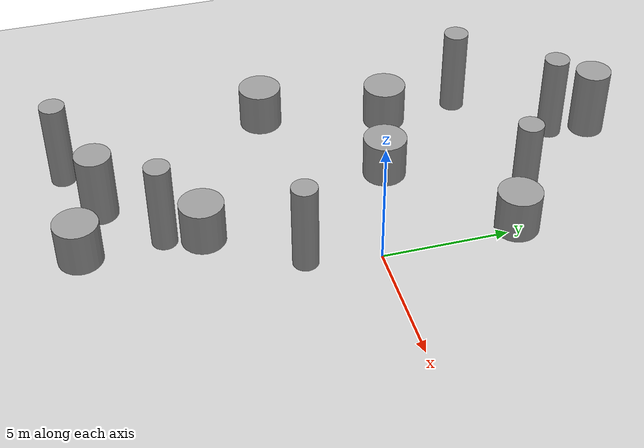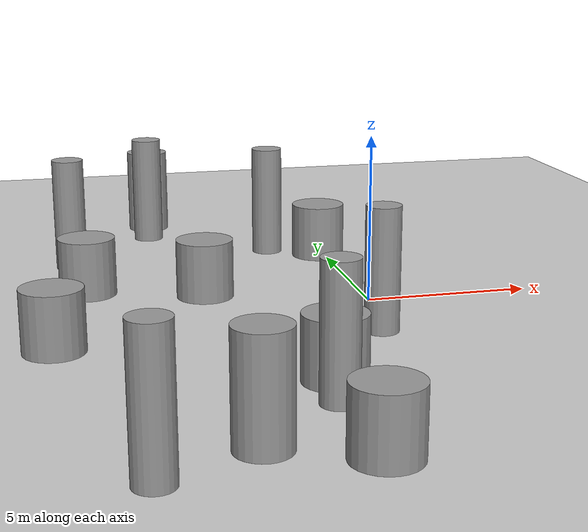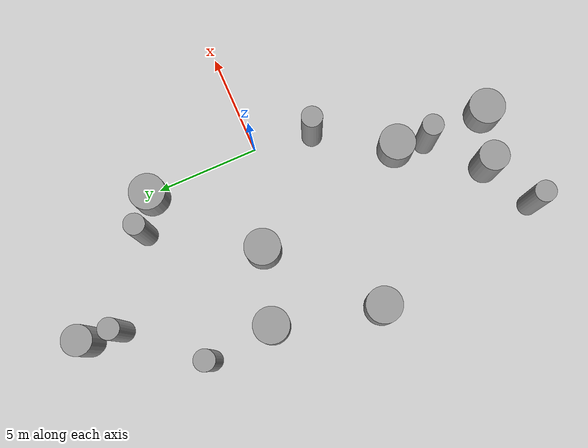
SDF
<sdf version="1.7">
 <world name="default">
  <model name="ground_plane">
   <static>1</static>
   <link name="link">
    <collision name="collision">
     <geometry><plane><normal>0 0 1</normal><size>100 100</size></plane></geometry>
     <surface>
      <contact><collide_bitmask>65535</collide_bitmask></contact>
      <friction><ode><mu>100</mu><mu2>50</mu2></ode></friction>
     </surface>
    </collision>
    <visual name="visual">
     <cast_shadows>0</cast_shadows>
     <geometry><plane><normal>0 0 1</normal><size>100 100</size></plane></geometry>
     <material>
      <script><uri>file://media/materials/scripts/gazebo.material</uri><name>Gazebo/Grey</name></script>
     </material>
    </visual>
   </link>
  </model>
  <model name="big_cylinder">
   <link name="link_6">
    <inertial>
     <mass>5.40188</mass>
     <inertia><ixx>2.45932</ixx><ixy>0</ixy><ixz>0</ixz><iyy>2.45932</iyy><iyz>0</iyz><izz>2.03968</izz></inertia>
    </inertial>
    <pose>3e-06 3e-06 0 0 -0 0</pose>
    <visual name="visual">
     <geometry><cylinder><radius>0.869008</radius><length>1.78822</length></cylinder></geometry>
     <material>
      <lighting>1</lighting>
      <script><uri>file://media/materials/scripts/gazebo.material</uri><name>Gazebo/Grey</name></script>
      <shader type="pixel"/>
     </material>
    </visual>
    <collision name="collision">
     <geometry><cylinder><radius>0.869008</radius><length>1.78822</length></cylinder></geometry>
     <surface>
      <friction>
       <ode><mu>1</mu><mu2>1</mu2><fdir1>0 0 0</fdir1><slip1>0</slip1><slip2>0</slip2></ode>
       <torsional>
        <coefficient>1</coefficient>
        <patch_radius>0</patch_radius>
        <surface_radius>0</surface_radius>
        <use_patch_radius>1</use_patch_radius>
        <ode><slip>0</slip></ode>
       </torsional>
      </friction>
      <bounce><restitution_coefficient>0</restitution_coefficient><threshold>1e+06</threshold></bounce>
      <contact>
       <collide_without_contact>0</collide_without_contact>
       <collide_without_contact_bitmask>1</collide_without_contact_bitmask>
       <collide_bitmask>1</collide_bitmask>
       <ode>
        <soft_cfm>0</soft_cfm>
        <soft_erp>0.2</soft_erp>
        <kp>1e+13</kp>
        <kd>1</kd>
        <max_vel>0.01</max_vel>
        <min_depth>0</min_depth>
       </ode>
       <bullet>
        <split_impulse>1</split_impulse>
        <split_impulse_penetration_threshold>-0.01</split_impulse_penetration_threshold>
        <soft_cfm>0</soft_cfm>
        <soft_erp>0.2</soft_erp>
        <kp>1e+13</kp>
        <kd>1</kd>
       </bullet>
      </contact>
     </surface>
    </collision>
   </link>
   <static>0</static>
   <pose>-2.87459 -10.8687 0.89411 0 -0 0</pose>
  </model>
  <model name="long_cylinder_0">
   <link name="link_5">
    <inertial>
     <mass>3.60259</mass>
     <inertia><ixx>4.12154</ixx><ixy>0</ixy><ixz>0</ixz><iyy>4.12154</iyy><iyz>0</iyz><izz>0.450323</izz></inertia>
    </inertial>
    <pose>0 -2e-06 0 0 -0 0</pose>
    <visual name="visual">
     <geometry><cylinder><radius>0.5</radius><length>3.60259</length></cylinder></geometry>
     <material>
      <lighting>1</lighting>
      <script><uri>file://media/materials/scripts/gazebo.material</uri><name>Gazebo/Grey</name></script>
      <shader type="pixel"/>
      <emissive>0 0 0 1</emissive>
     </material>
    </visual>
    <collision name="collision">
     <geometry><cylinder><radius>0.5</radius><length>3.60258</length></cylinder></geometry>
     <surface>
      <friction>
       <ode><mu>1</mu><mu2>1</mu2><fdir1>0 0 0</fdir1><slip1>0</slip1><slip2>0</slip2></ode>
       <torsional>
        <coefficient>1</coefficient>
        <patch_radius>0</patch_radius>
        <surface_radius>0</surface_radius>
        <use_patch_radius>1</use_patch_radius>
        <ode><slip>0</slip></ode>
       </torsional>
      </friction>
      <bounce><restitution_coefficient>0</restitution_coefficient><threshold>1e+06</threshold></bounce>
      <contact>
       <collide_without_contact>0</collide_without_contact>
       <collide_without_contact_bitmask>1</collide_without_contact_bitmask>
       <collide_bitmask>1</collide_bitmask>
       <ode>
        <soft_cfm>0</soft_cfm>
        <soft_erp>0.2</soft_erp>
        <kp>1e+13</kp>
        <kd>1</kd>
        <max_vel>0.01</max_vel>
        <min_depth>0</min_depth>
       </ode>
       <bullet>
        <split_impulse>1</split_impulse>
        <split_impulse_penetration_threshold>-0.01</split_impulse_penetration_threshold>
        <soft_cfm>0</soft_cfm>
        <soft_erp>0.2</soft_erp>
        <kp>1e+13</kp>
        <kd>1</kd>
       </bullet>
      </contact>
     </surface>
    </collision>
   </link>
   <static>0</static>
   <pose>-7.80702 -10.9837 1.80128 0 -0 0</pose>
  </model>
  <model name="big_cylinder_0">
   <link name="link_6">
    <inertial>
     <mass>5.40188</mass>
     <inertia><ixx>2.45932</ixx><ixy>0</ixy><ixz>0</ixz><iyy>2.45932</iyy><iyz>0</iyz><izz>2.03968</izz></inertia>
    </inertial>
    <pose>3e-06 3e-06 0 0 -0 0</pose>
    <visual name="visual">
     <geometry><cylinder><radius>0.869008</radius><length>1.78822</length></cylinder></geometry>
     <material>
      <lighting>1</lighting>
      <script><uri>file://media/materials/scripts/gazebo.material</uri><name>Gazebo/Grey</name></script>
      <shader type="pixel"/>
     </material>
    </visual>
    <collision name="collision">
     <geometry><cylinder><radius>0.869008</radius><length>1.78822</length></cylinder></geometry>
     <surface>
      <friction>
       <ode><mu>1</mu><mu2>1</mu2><fdir1>0 0 0</fdir1><slip1>0</slip1><slip2>0</slip2></ode>
       <torsional>
        <coefficient>1</coefficient>
        <patch_radius>0</patch_radius>
        <surface_radius>0</surface_radius>
        <use_patch_radius>1</use_patch_radius>
        <ode><slip>0</slip></ode>
       </torsional>
      </friction>
      <bounce><restitution_coefficient>0</restitution_coefficient><threshold>1e+06</threshold></bounce>
      <contact>
       <collide_without_contact>0</collide_without_contact>
       <collide_without_contact_bitmask>1</collide_without_contact_bitmask>
       <collide_bitmask>1</collide_bitmask>
       <ode>
        <soft_cfm>0</soft_cfm>
        <soft_erp>0.2</soft_erp>
        <kp>1e+13</kp>
        <kd>1</kd>
        <max_vel>0.01</max_vel>
        <min_depth>0</min_depth>
       </ode>
       <bullet>
        <split_impulse>1</split_impulse>
        <split_impulse_penetration_threshold>-0.01</split_impulse_penetration_threshold>
        <soft_cfm>0</soft_cfm>
        <soft_erp>0.2</soft_erp>
        <kp>1e+13</kp>
        <kd>1</kd>
       </bullet>
      </contact>
     </surface>
    </collision>
   </link>
   <static>0</static>
   <pose>-2.74915 -6.24069 0.89411 0 -0 0</pose>
  </model>
  <model name="long_cylinder_1">
   <link name="link_5">
    <inertial>
     <mass>3.60259</mass>
     <inertia><ixx>4.12154</ixx><ixy>0</ixy><ixz>0</ixz><iyy>4.12154</iyy><iyz>0</iyz><izz>0.450323</izz></inertia>
    </inertial>
    <pose>0 -2e-06 0 0 -0 0</pose>
    <visual name="visual">
     <geometry><cylinder><radius>0.5</radius><length>3.60259</length></cylinder></geometry>
     <material>
      <lighting>1</lighting>
      <script><uri>file://media/materials/scripts/gazebo.material</uri><name>Gazebo/Grey</name></script>
      <shader type="pixel"/>
      <emissive>0 0 0 1</emissive>
     </material>
    </visual>
    <collision name="collision">
     <geometry><cylinder><radius>0.5</radius><length>3.60258</length></cylinder></geometry>
     <surface>
      <friction>
       <ode><mu>1</mu><mu2>1</mu2><fdir1>0 0 0</fdir1><slip1>0</slip1><slip2>0</slip2></ode>
       <torsional>
        <coefficient>1</coefficient>
        <patch_radius>0</patch_radius>
        <surface_radius>0</surface_radius>
        <use_patch_radius>1</use_patch_radius>
        <ode><slip>0</slip></ode>
       </torsional>
      </friction>
      <bounce><restitution_coefficient>0</restitution_coefficient><threshold>1e+06</threshold></bounce>
      <contact>
       <collide_without_contact>0</collide_without_contact>
       <collide_without_contact_bitmask>1</collide_without_contact_bitmask>
       <collide_bitmask>1</collide_bitmask>
       <ode>
        <soft_cfm>0</soft_cfm>
        <soft_erp>0.2</soft_erp>
        <kp>1e+13</kp>
        <kd>1</kd>
        <max_vel>0.01</max_vel>
        <min_depth>0</min_depth>
       </ode>
       <bullet>
        <split_impulse>1</split_impulse>
        <split_impulse_penetration_threshold>-0.01</split_impulse_penetration_threshold>
        <soft_cfm>0</soft_cfm>
        <soft_erp>0.2</soft_erp>
        <kp>1e+13</kp>
        <kd>1</kd>
       </bullet>
      </contact>
     </surface>
    </collision>
   </link>
   <static>0</static>
   <pose>-0.478336 -2.83491 1.80128 0 -0 0</pose>
  </model>
  <model name="big_cylinder_3">
   <link name="link_6">
    <inertial>
     <mass>5.40188</mass>
     <inertia><ixx>2.45932</ixx><ixy>0</ixy><ixz>0</ixz><iyy>2.45932</iyy><iyz>0</iyz><izz>2.03968</izz></inertia>
    </inertial>
    <pose>3e-06 3e-06 0 0 -0 0</pose>
    <visual name="visual">
     <geometry><cylinder><radius>0.869008</radius><length>1.78822</length></cylinder></geometry>
     <material>
      <lighting>1</lighting>
      <script><uri>file://media/materials/scripts/gazebo.material</uri><name>Gazebo/Grey</name></script>
      <shader type="pixel"/>
     </material>
    </visual>
    <collision name="collision">
     <geometry><cylinder><radius>0.869008</radius><length>1.78822</length></cylinder></geometry>
     <surface>
      <friction>
       <ode><mu>1</mu><mu2>1</mu2><fdir1>0 0 0</fdir1><slip1>0</slip1><slip2>0</slip2></ode>
       <torsional>
        <coefficient>1</coefficient>
        <patch_radius>0</patch_radius>
        <surface_radius>0</surface_radius>
        <use_patch_radius>1</use_patch_radius>
        <ode><slip>0</slip></ode>
       </torsional>
      </friction>
      <bounce><restitution_coefficient>0</restitution_coefficient><threshold>1e+06</threshold></bounce>
      <contact>
       <collide_without_contact>0</collide_without_contact>
       <collide_without_contact_bitmask>1</collide_without_contact_bitmask>
       <collide_bitmask>1</collide_bitmask>
       <ode>
        <soft_cfm>0</soft_cfm>
        <soft_erp>0.2</soft_erp>
        <kp>1e+13</kp>
        <kd>1</kd>
        <max_vel>0.01</max_vel>
        <min_depth>0</min_depth>
       </ode>
       <bullet>
        <split_impulse>1</split_impulse>
        <split_impulse_penetration_threshold>-0.01</split_impulse_penetration_threshold>
        <soft_cfm>0</soft_cfm>
        <soft_erp>0.2</soft_erp>
        <kp>1e+13</kp>
        <kd>1</kd>
       </bullet>
      </contact>
     </surface>
    </collision>
   </link>
   <static>0</static>
   <pose>-0.202376 5.44842 0.89411 0 -0 0</pose>
  </model>
  <model name="big_cylinder_4">
   <link name="link_6">
    <inertial>
     <mass>5.40188</mass>
     <inertia><ixx>2.45932</ixx><ixy>0</ixy><ixz>0</ixz><iyy>2.45932</iyy><iyz>0</iyz><izz>2.03968</izz></inertia>
    </inertial>
    <pose>3e-06 3e-06 0 0 -0 0</pose>
    <visual name="visual">
     <geometry><cylinder><radius>0.869008</radius><length>1.78822</length></cylinder></geometry>
     <material>
      <lighting>1</lighting>
      <script><uri>file://media/materials/scripts/gazebo.material</uri><name>Gazebo/Grey</name></script>
      <shader type="pixel"/>
     </material>
    </visual>
    <collision name="collision">
     <geometry><cylinder><radius>0.869008</radius><length>1.78822</length></cylinder></geometry>
     <surface>
      <friction>
       <ode><mu>1</mu><mu2>1</mu2><fdir1>0 0 0</fdir1><slip1>0</slip1><slip2>0</slip2></ode>
       <torsional>
        <coefficient>1</coefficient>
        <patch_radius>0</patch_radius>
        <surface_radius>0</surface_radius>
        <use_patch_radius>1</use_patch_radius>
        <ode><slip>0</slip></ode>
       </torsional>
      </friction>
      <bounce><restitution_coefficient>0</restitution_coefficient><threshold>1e+06</threshold></bounce>
      <contact>
       <collide_without_contact>0</collide_without_contact>
       <collide_without_contact_bitmask>1</collide_without_contact_bitmask>
       <collide_bitmask>1</collide_bitmask>
       <ode>
        <soft_cfm>0</soft_cfm>
        <soft_erp>0.2</soft_erp>
        <kp>1e+13</kp>
        <kd>1</kd>
        <max_vel>0.01</max_vel>
        <min_depth>0</min_depth>
       </ode>
       <bullet>
        <split_impulse>1</split_impulse>
        <split_impulse_penetration_threshold>-0.01</split_impulse_penetration_threshold>
        <soft_cfm>0</soft_cfm>
        <soft_erp>0.2</soft_erp>
        <kp>1e+13</kp>
        <kd>1</kd>
       </bullet>
      </contact>
     </surface>
    </collision>
   </link>
   <static>0</static>
   <pose>-4.74763 1.54588 0.89411 0 -0 0</pose>
  </model>
  <model name="long_cylinder_3">
   <link name="link_5">
    <inertial>
     <mass>3.60259</mass>
     <inertia><ixx>4.12154</ixx><ixy>0</ixy><ixz>0</ixz><iyy>4.12154</iyy><iyz>0</iyz><izz>0.450323</izz></inertia>
    </inertial>
    <pose>0 -2e-06 0 0 -0 0</pose>
    <visual name="visual">
     <geometry><cylinder><radius>0.5</radius><length>3.60259</length></cylinder></geometry>
     <material>
      <lighting>1</lighting>
      <script><uri>file://media/materials/scripts/gazebo.material</uri><name>Gazebo/Grey</name></script>
      <shader type="pixel"/>
      <emissive>0 0 0 1</emissive>
     </material>
    </visual>
    <collision name="collision">
     <geometry><cylinder><radius>0.5</radius><length>3.60258</length></cylinder></geometry>
     <surface>
      <friction>
       <ode><mu>1</mu><mu2>1</mu2><fdir1>0 0 0</fdir1><slip1>0</slip1><slip2>0</slip2></ode>
       <torsional>
        <coefficient>1</coefficient>
        <patch_radius>0</patch_radius>
        <surface_radius>0</surface_radius>
        <use_patch_radius>1</use_patch_radius>
        <ode><slip>0</slip></ode>
       </torsional>
      </friction>
      <bounce><restitution_coefficient>0</restitution_coefficient><threshold>1e+06</threshold></bounce>
      <contact>
       <collide_without_contact>0</collide_without_contact>
       <collide_without_contact_bitmask>1</collide_without_contact_bitmask>
       <collide_bitmask>1</collide_bitmask>
       <ode>
        <soft_cfm>0</soft_cfm>
        <soft_erp>0.2</soft_erp>
        <kp>1e+13</kp>
        <kd>1</kd>
        <max_vel>0.01</max_vel>
        <min_depth>0</min_depth>
       </ode>
       <bullet>
        <split_impulse>1</split_impulse>
        <split_impulse_penetration_threshold>-0.01</split_impulse_penetration_threshold>
        <soft_cfm>0</soft_cfm>
        <soft_erp>0.2</soft_erp>
        <kp>1e+13</kp>
        <kd>1</kd>
       </bullet>
      </contact>
     </surface>
    </collision>
   </link>
   <static>0</static>
   <pose>-5.60309 9.06115 1.80128 0 -0 0</pose>
  </model>
  <model name="long_cylinder_4">
   <link name="link_5">
    <inertial>
     <mass>3.60259</mass>
     <inertia><ixx>4.12154</ixx><ixy>0</ixy><ixz>0</ixz><iyy>4.12154</iyy><iyz>0</iyz><izz>0.450323</izz></inertia>
    </inertial>
    <pose>0 -2e-06 0 0 -0 0</pose>
    <visual name="visual">
     <geometry><cylinder><radius>0.5</radius><length>3.60259</length></cylinder></geometry>
     <material>
      <lighting>1</lighting>
      <script><uri>file://media/materials/scripts/gazebo.material</uri><name>Gazebo/Grey</name></script>
      <shader type="pixel"/>
      <emissive>0 0 0 1</emissive>
     </material>
    </visual>
    <collision name="collision">
     <geometry><cylinder><radius>0.5</radius><length>3.60258</length></cylinder></geometry>
     <surface>
      <friction>
       <ode><mu>1</mu><mu2>1</mu2><fdir1>0 0 0</fdir1><slip1>0</slip1><slip2>0</slip2></ode>
       <torsional>
        <coefficient>1</coefficient>
        <patch_radius>0</patch_radius>
        <surface_radius>0</surface_radius>
        <use_patch_radius>1</use_patch_radius>
        <ode><slip>0</slip></ode>
       </torsional>
      </friction>
      <bounce><restitution_coefficient>0</restitution_coefficient><threshold>1e+06</threshold></bounce>
      <contact>
       <collide_without_contact>0</collide_without_contact>
       <collide_without_contact_bitmask>1</collide_without_contact_bitmask>
       <collide_bitmask>1</collide_bitmask>
       <ode>
        <soft_cfm>0</soft_cfm>
        <soft_erp>0.2</soft_erp>
        <kp>1e+13</kp>
        <kd>1</kd>
        <max_vel>0.01</max_vel>
        <min_depth>0</min_depth>
       </ode>
       <bullet>
        <split_impulse>1</split_impulse>
        <split_impulse_penetration_threshold>-0.01</split_impulse_penetration_threshold>
        <soft_cfm>0</soft_cfm>
        <soft_erp>0.2</soft_erp>
        <kp>1e+13</kp>
        <kd>1</kd>
       </bullet>
      </contact>
     </surface>
    </collision>
   </link>
   <static>0</static>
   <pose>-3.02595 -7.6898 1.80128 0 -0 0</pose>
  </model>
  <model name="medium_cylinder">
   <link name="link_7">
    <inertial>
     <mass>5.8515</mass>
     <inertia><ixx>4.76268</ixx><ixy>0</ixy><ixz>0</ixz><iyy>4.76268</iyy><iyz>0</iyz><izz>1.49119</izz></inertia>
    </inertial>
    <pose>-1e-06 1e-06 0 0 -0 0</pose>
    <visual name="visual">
     <geometry><cylinder><radius>0.713918</radius><length>2.8702</length></cylinder></geometry>
     <material>
      <lighting>1</lighting>
      <script><uri>file://media/materials/scripts/gazebo.material</uri><name>Gazebo/Grey</name></script>
      <shader type="pixel"/>
     </material>
    </visual>
    <collision name="collision">
     <geometry><cylinder><radius>0.713918</radius><length>2.8702</length></cylinder></geometry>
     <surface>
      <friction>
       <ode><mu>1</mu><mu2>1</mu2><fdir1>0 0 0</fdir1><slip1>0</slip1><slip2>0</slip2></ode>
       <torsional>
        <coefficient>1</coefficient>
        <patch_radius>0</patch_radius>
        <surface_radius>0</surface_radius>
        <use_patch_radius>1</use_patch_radius>
        <ode><slip>0</slip></ode>
       </torsional>
      </friction>
      <bounce><restitution_coefficient>0</restitution_coefficient><threshold>1e+06</threshold></bounce>
      <contact>
       <collide_without_contact>0</collide_without_contact>
       <collide_without_contact_bitmask>1</collide_without_contact_bitmask>
       <collide_bitmask>1</collide_bitmask>
       <ode>
        <soft_cfm>0</soft_cfm>
        <soft_erp>0.2</soft_erp>
        <kp>1e+13</kp>
        <kd>1</kd>
        <max_vel>0.01</max_vel>
        <min_depth>0</min_depth>
       </ode>
       <bullet>
        <split_impulse>1</split_impulse>
        <split_impulse_penetration_threshold>-0.01</split_impulse_penetration_threshold>
        <soft_cfm>0</soft_cfm>
        <soft_erp>0.2</soft_erp>
        <kp>1e+13</kp>
        <kd>1</kd>
       </bullet>
      </contact>
     </surface>
    </collision>
   </link>
   <static>0</static>
   <pose>-5.31596 -9.82313 1.4351 0 -0 0</pose>
  </model>
  <model name="big_cylinder_6">
   <link name="link_6">
    <inertial>
     <mass>5.40188</mass>
     <inertia><ixx>2.45932</ixx><ixy>0</ixy><ixz>0</ixz><iyy>2.45932</iyy><iyz>0</iyz><izz>2.03968</izz></inertia>
    </inertial>
    <pose>3e-06 3e-06 0 0 -0 0</pose>
    <visual name="visual">
     <geometry><cylinder><radius>0.869008</radius><length>1.78822</length></cylinder></geometry>
     <material>
      <lighting>1</lighting>
      <script><uri>file://media/materials/scripts/gazebo.material</uri><name>Gazebo/Grey</name></script>
      <shader type="pixel"/>
     </material>
    </visual>
    <collision name="collision">
     <geometry><cylinder><radius>0.869008</radius><length>1.78822</length></cylinder></geometry>
     <surface>
      <friction>
       <ode><mu>1</mu><mu2>1</mu2><fdir1>0 0 0</fdir1><slip1>0</slip1><slip2>0</slip2></ode>
       <torsional>
        <coefficient>1</coefficient>
        <patch_radius>0</patch_radius>
        <surface_radius>0</surface_radius>
        <use_patch_radius>1</use_patch_radius>
        <ode><slip>0</slip></ode>
       </torsional>
      </friction>
      <bounce><restitution_coefficient>0</restitution_coefficient><threshold>1e+06</threshold></bounce>
      <contact>
       <collide_without_contact>0</collide_without_contact>
       <collide_without_contact_bitmask>1</collide_without_contact_bitmask>
       <collide_bitmask>1</collide_bitmask>
       <ode>
        <soft_cfm>0</soft_cfm>
        <soft_erp>0.2</soft_erp>
        <kp>1e+13</kp>
        <kd>1</kd>
        <max_vel>0.01</max_vel>
        <min_depth>0</min_depth>
       </ode>
       <bullet>
        <split_impulse>1</split_impulse>
        <split_impulse_penetration_threshold>-0.01</split_impulse_penetration_threshold>
        <soft_cfm>0</soft_cfm>
        <soft_erp>0.2</soft_erp>
        <kp>1e+13</kp>
        <kd>1</kd>
       </bullet>
      </contact>
     </surface>
    </collision>
   </link>
   <static>0</static>
   <pose>-9.44404 -2.49868 0.89411 0 -0 0</pose>
  </model>
  <model name="big_cylinder_8">
   <link name="link_6">
    <inertial>
     <mass>5.40188</mass>
     <inertia><ixx>2.45932</ixx><ixy>0</ixy><ixz>0</ixz><iyy>2.45932</iyy><iyz>0</iyz><izz>2.03968</izz></inertia>
    </inertial>
    <pose>3e-06 3e-06 0 0 -0 0</pose>
    <visual name="visual">
     <geometry><cylinder><radius>0.869008</radius><length>1.78822</length></cylinder></geometry>
     <material>
      <lighting>1</lighting>
      <script><uri>file://media/materials/scripts/gazebo.material</uri><name>Gazebo/Grey</name></script>
      <shader type="pixel"/>
     </material>
    </visual>
    <collision name="collision">
     <geometry><cylinder><radius>0.869008</radius><length>1.78822</length></cylinder></geometry>
     <surface>
      <friction>
       <ode><mu>1</mu><mu2>1</mu2><fdir1>0 0 0</fdir1><slip1>0</slip1><slip2>0</slip2></ode>
       <torsional>
        <coefficient>1</coefficient>
        <patch_radius>0</patch_radius>
        <surface_radius>0</surface_radius>
        <use_patch_radius>1</use_patch_radius>
        <ode><slip>0</slip></ode>
       </torsional>
      </friction>
      <bounce><restitution_coefficient>0</restitution_coefficient><threshold>1e+06</threshold></bounce>
      <contact>
       <collide_without_contact>0</collide_without_contact>
       <collide_without_contact_bitmask>1</collide_without_contact_bitmask>
       <collide_bitmask>1</collide_bitmask>
       <ode>
        <soft_cfm>0</soft_cfm>
        <soft_erp>0.2</soft_erp>
        <kp>1e+13</kp>
        <kd>1</kd>
        <max_vel>0.01</max_vel>
        <min_depth>0</min_depth>
       </ode>
       <bullet>
        <split_impulse>1</split_impulse>
        <split_impulse_penetration_threshold>-0.01</split_impulse_penetration_threshold>
        <soft_cfm>0</soft_cfm>
        <soft_erp>0.2</soft_erp>
        <kp>1e+13</kp>
        <kd>1</kd>
       </bullet>
      </contact>
     </surface>
    </collision>
   </link>
   <static>0</static>
   <pose>-8.20748 2.58671 0.89411 0 -0 -5.7e-05</pose>
  </model>
  <model name="long_cylinder_5">
   <link name="link_5">
    <inertial>
     <mass>3.60259</mass>
     <inertia><ixx>4.12154</ixx><ixy>0</ixy><ixz>0</ixz><iyy>4.12154</iyy><iyz>0</iyz><izz>0.450323</izz></inertia>
    </inertial>
    <pose>0 -2e-06 0 0 -0 0</pose>
    <visual name="visual">
     <geometry><cylinder><radius>0.5</radius><length>3.60259</length></cylinder></geometry>
     <material>
      <lighting>1</lighting>
      <script><uri>file://media/materials/scripts/gazebo.material</uri><name>Gazebo/Grey</name></script>
      <shader type="pixel"/>
      <emissive>0 0 0 1</emissive>
     </material>
    </visual>
    <collision name="collision">
     <geometry><cylinder><radius>0.5</radius><length>3.60258</length></cylinder></geometry>
     <surface>
      <friction>
       <ode><mu>1</mu><mu2>1</mu2><fdir1>0 0 0</fdir1><slip1>0</slip1><slip2>0</slip2></ode>
       <torsional>
        <coefficient>1</coefficient>
        <patch_radius>0</patch_radius>
        <surface_radius>0</surface_radius>
        <use_patch_radius>1</use_patch_radius>
        <ode><slip>0</slip></ode>
       </torsional>
      </friction>
      <bounce><restitution_coefficient>0</restitution_coefficient><threshold>1e+06</threshold></bounce>
      <contact>
       <collide_without_contact>0</collide_without_contact>
       <collide_without_contact_bitmask>1</collide_without_contact_bitmask>
       <collide_bitmask>1</collide_bitmask>
       <ode>
        <soft_cfm>0</soft_cfm>
        <soft_erp>0.2</soft_erp>
        <kp>1e+13</kp>
        <kd>1</kd>
        <max_vel>0.01</max_vel>
        <min_depth>0</min_depth>
       </ode>
       <bullet>
        <split_impulse>1</split_impulse>
        <split_impulse_penetration_threshold>-0.01</split_impulse_penetration_threshold>
        <soft_cfm>0</soft_cfm>
        <soft_erp>0.2</soft_erp>
        <kp>1e+13</kp>
        <kd>1</kd>
       </bullet>
      </contact>
     </surface>
    </collision>
   </link>
   <static>0</static>
   <pose>-8.52311 5.77663 1.80129 0 -0 0</pose>
  </model>
  <model name="medium_cylinder_2">
   <link name="link_7">
    <inertial>
     <mass>5.8515</mass>
     <inertia><ixx>4.76268</ixx><ixy>0</ixy><ixz>0</ixz><iyy>4.76268</iyy><iyz>0</iyz><izz>1.49119</izz></inertia>
    </inertial>
    <pose>-1e-06 1e-06 0 0 -0 0</pose>
    <visual name="visual">
     <geometry><cylinder><radius>0.713918</radius><length>2.8702</length></cylinder></geometry>
     <material>
      <lighting>1</lighting>
      <script><uri>file://media/materials/scripts/gazebo.material</uri><name>Gazebo/Grey</name></script>
      <shader type="pixel"/>
     </material>
    </visual>
    <collision name="collision">
     <geometry><cylinder><radius>0.713918</radius><length>2.8702</length></cylinder></geometry>
     <surface>
      <friction>
       <ode><mu>1</mu><mu2>1</mu2><fdir1>0 0 0</fdir1><slip1>0</slip1><slip2>0</slip2></ode>
       <torsional>
        <coefficient>1</coefficient>
        <patch_radius>0</patch_radius>
        <surface_radius>0</surface_radius>
        <use_patch_radius>1</use_patch_radius>
        <ode><slip>0</slip></ode>
       </torsional>
      </friction>
      <bounce><restitution_coefficient>0</restitution_coefficient><threshold>1e+06</threshold></bounce>
      <contact>
       <collide_without_contact>0</collide_without_contact>
       <collide_without_contact_bitmask>1</collide_without_contact_bitmask>
       <collide_bitmask>1</collide_bitmask>
       <ode>
        <soft_cfm>0</soft_cfm>
        <soft_erp>0.2</soft_erp>
        <kp>1e+13</kp>
        <kd>1</kd>
        <max_vel>0.01</max_vel>
        <min_depth>0</min_depth>
       </ode>
       <bullet>
        <split_impulse>1</split_impulse>
        <split_impulse_penetration_threshold>-0.01</split_impulse_penetration_threshold>
        <soft_cfm>0</soft_cfm>
        <soft_erp>0.2</soft_erp>
        <kp>1e+13</kp>
        <kd>1</kd>
       </bullet>
      </contact>
     </surface>
    </collision>
   </link>
   <static>0</static>
   <pose>-5.4132 10.6705 1.4351 0 -0 0</pose>
  </model>
  <model name="long_cylinder_6">
   <link name="link_5">
    <inertial>
     <mass>3.60259</mass>
     <inertia><ixx>4.12154</ixx><ixy>0</ixy><ixz>0</ixz><iyy>4.12154</iyy><iyz>0</iyz><izz>0.450323</izz></inertia>
    </inertial>
    <pose>0 -2e-06 0 0 -0 0</pose>
    <visual name="visual">
     <geometry><cylinder><radius>0.5</radius><length>3.60259</length></cylinder></geometry>
     <material>
      <lighting>1</lighting>
      <script><uri>file://media/materials/scripts/gazebo.material</uri><name>Gazebo/Grey</name></script>
      <shader type="pixel"/>
      <emissive>0 0 0 1</emissive>
     </material>
    </visual>
    <collision name="collision">
     <geometry><cylinder><radius>0.5</radius><length>3.60258</length></cylinder></geometry>
     <surface>
      <friction>
       <ode><mu>1</mu><mu2>1</mu2><fdir1>0 0 0</fdir1><slip1>0</slip1><slip2>0</slip2></ode>
       <torsional>
        <coefficient>1</coefficient>
        <patch_radius>0</patch_radius>
        <surface_radius>0</surface_radius>
        <use_patch_radius>1</use_patch_radius>
        <ode><slip>0</slip></ode>
       </torsional>
      </friction>
      <bounce><restitution_coefficient>0</restitution_coefficient><threshold>1e+06</threshold></bounce>
      <contact>
       <collide_without_contact>0</collide_without_contact>
       <collide_without_contact_bitmask>1</collide_without_contact_bitmask>
       <collide_bitmask>1</collide_bitmask>
       <ode>
        <soft_cfm>0</soft_cfm>
        <soft_erp>0.2</soft_erp>
        <kp>1e+13</kp>
        <kd>1</kd>
        <max_vel>0.01</max_vel>
        <min_depth>0</min_depth>
       </ode>
       <bullet>
        <split_impulse>1</split_impulse>
        <split_impulse_penetration_threshold>-0.01</split_impulse_penetration_threshold>
        <soft_cfm>0</soft_cfm>
        <soft_erp>0.2</soft_erp>
        <kp>1e+13</kp>
        <kd>1</kd>
       </bullet>
      </contact>
     </surface>
    </collision>
   </link>
   <static>0</static>
   <pose>-1.79426 6.34794 1.80129 0 -0 0</pose>
  </model>
 </world>
</sdf>
